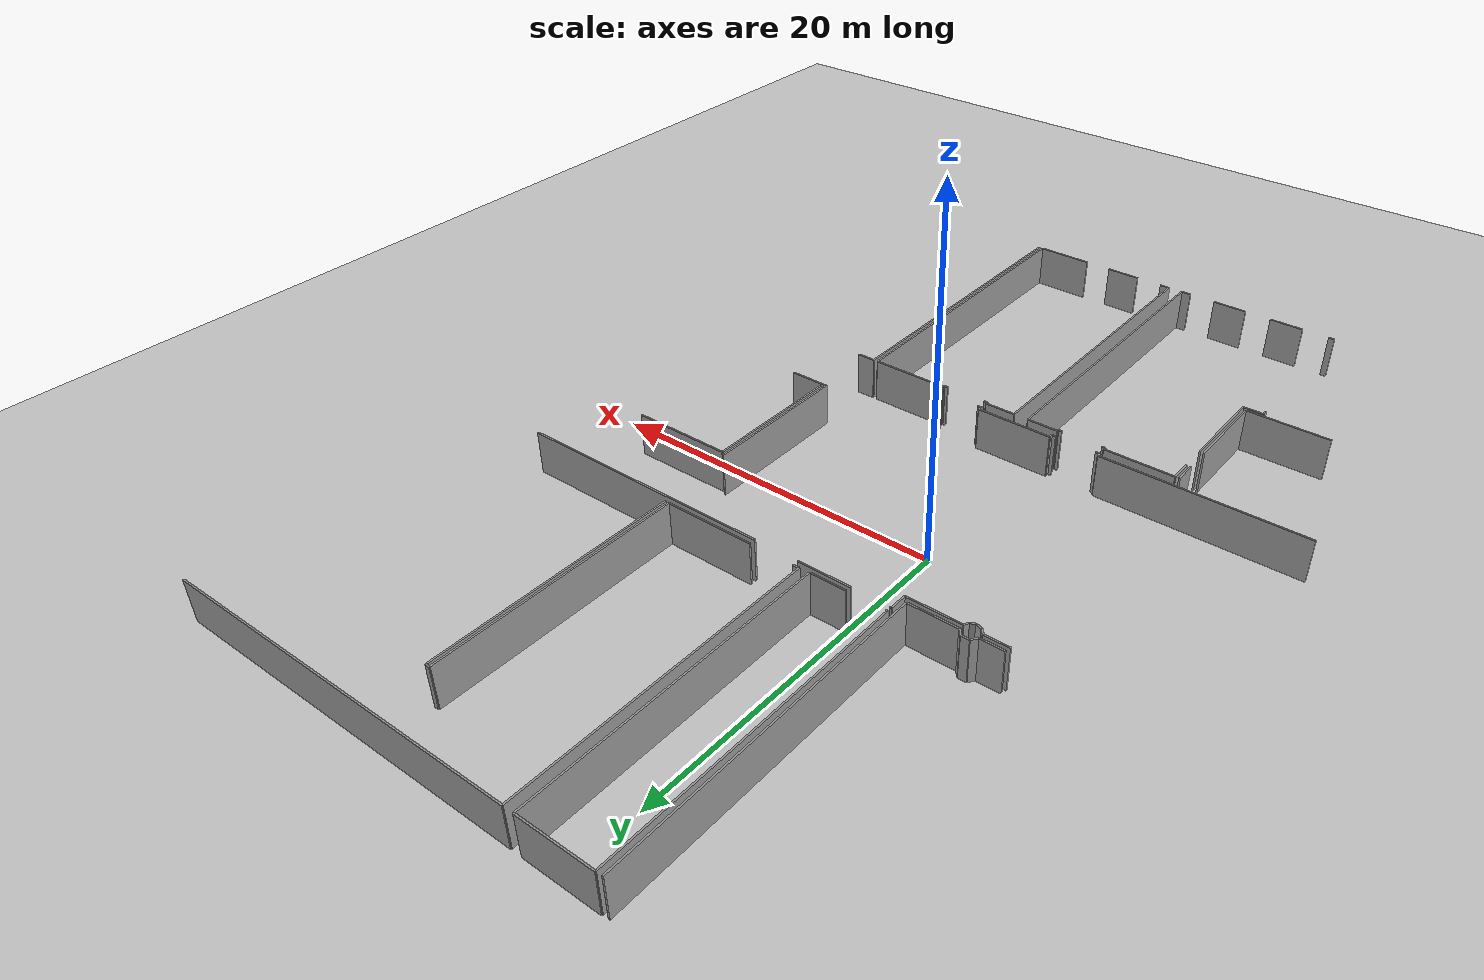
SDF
<sdf version="1.6">
 <world name="default">
  <model name="ground_plane">
   <static>1</static>
   <link name="link">
    <collision name="collision">
     <geometry><plane><normal>0 0 1</normal><size>100 100</size></plane></geometry>
     <surface><friction><ode><mu>100</mu><mu2>50</mu2></ode></friction></surface>
    </collision>
    <visual name="visual">
     <cast_shadows>0</cast_shadows>
     <geometry><plane><normal>0 0 1</normal><size>100 100</size></plane></geometry>
     <material>
      <script><uri>file://media/materials/scripts/gazebo.material</uri><name>Gazebo/Grey</name></script>
     </material>
    </visual>
   </link>
  </model>
  <model name="50041169">
   <static>1</static>
   <link name="Wall_99">
    <collision name="Wall_99_Collision">
     <geometry><box><size>0.275475099336 0.1 2.5</size></box></geometry>
     <pose>0.137737549668 0 1.25 0 0 0</pose>
    </collision>
    <visual name="Wall_99_Visual">
     <pose>0.137737549668 0 1.25 0 0 0</pose>
     <geometry><box><size>0.275475099336 0.1 2.5</size></box></geometry>
     <material>
      <script><uri>file://media/materials/scripts/gazebo.material</uri><name>Gazebo/Grey</name></script>
      <ambient>1 1 1 1</ambient>
     </material>
    </visual>
    <pose>77.8106711691 -38.6768943674 0 0 0 -1.57079632679</pose>
   </link>
   <link name="Wall_100">
    <collision name="Wall_100_Collision">
     <geometry><box><size>0.225457961484 0.1 2.5</size></box></geometry>
     <pose>0.112728980742 0 1.25 0 0 0</pose>
    </collision>
    <visual name="Wall_100_Visual">
     <pose>0.112728980742 0 1.25 0 0 0</pose>
     <geometry><box><size>0.225457961484 0.1 2.5</size></box></geometry>
     <material>
      <script><uri>file://media/materials/scripts/gazebo.material</uri><name>Gazebo/Grey</name></script>
      <ambient>1 1 1 1</ambient>
     </material>
    </visual>
    <pose>77.8106711691 -38.9523694667 0 0 0 3.14159265359</pose>
   </link>
   <link name="Wall_101">
    <collision name="Wall_101_Collision">
     <geometry><box><size>0.230408896449 0.1 2.5</size></box></geometry>
     <pose>0.115204448225 0 1.25 0 0 0</pose>
    </collision>
    <visual name="Wall_101_Visual">
     <pose>0.115204448225 0 1.25 0 0 0</pose>
     <geometry><box><size>0.230408896449 0.1 2.5</size></box></geometry>
     <material>
      <script><uri>file://media/materials/scripts/gazebo.material</uri><name>Gazebo/Grey</name></script>
      <ambient>1 1 1 1</ambient>
     </material>
    </visual>
    <pose>75.233138258 -38.9523694667 0 0 0 3.14159265359</pose>
   </link>
   <link name="Wall_102">
    <collision name="Wall_102_Collision">
     <geometry><box><size>0.239549084077 0.1 2.5</size></box></geometry>
     <pose>0.119774542039 0 1.25 0 0 0</pose>
    </collision>
    <visual name="Wall_102_Visual">
     <pose>0.119774542039 0 1.25 0 0 0</pose>
     <geometry><box><size>0.239549084077 0.1 2.5</size></box></geometry>
     <material>
      <script><uri>file://media/materials/scripts/gazebo.material</uri><name>Gazebo/Grey</name></script>
      <ambient>1 1 1 1</ambient>
     </material>
    </visual>
    <pose>75.0027293616 -38.9523694667 0 0 0 1.57079632679</pose>
   </link>
   <link name="Wall_103">
    <collision name="Wall_103_Collision">
     <geometry><box><size>4.36761326851 0.1 2.5</size></box></geometry>
     <pose>2.18380663425 0 1.25 0 0 0</pose>
    </collision>
    <visual name="Wall_103_Visual">
     <pose>2.18380663425 0 1.25 0 0 0</pose>
     <geometry><box><size>4.36761326851 0.1 2.5</size></box></geometry>
     <material>
      <script><uri>file://media/materials/scripts/gazebo.material</uri><name>Gazebo/Grey</name></script>
      <ambient>1 1 1 1</ambient>
     </material>
    </visual>
    <pose>75.0027293616 -38.7128203826 0 0 0 3.14159265359</pose>
   </link>
   <link name="Wall_104">
    <collision name="Wall_104_Collision">
     <geometry><box><size>0.230408896449 0.1 2.5</size></box></geometry>
     <pose>0.115204448225 0 1.25 0 0 0</pose>
    </collision>
    <visual name="Wall_104_Visual">
     <pose>0.115204448225 0 1.25 0 0 0</pose>
     <geometry><box><size>0.230408896449 0.1 2.5</size></box></geometry>
     <material>
      <script><uri>file://media/materials/scripts/gazebo.material</uri><name>Gazebo/Grey</name></script>
      <ambient>1 1 1 1</ambient>
     </material>
    </visual>
    <pose>70.6351160931 -38.7128203826 0 0 0 -1.57079632679</pose>
   </link>
   <link name="Wall_105">
    <collision name="Wall_105_Collision">
     <geometry><box><size>0.230281949399 0.1 2.5</size></box></geometry>
     <pose>0.115140974699 0 1.25 0 0 0</pose>
    </collision>
    <visual name="Wall_105_Visual">
     <pose>0.115140974699 0 1.25 0 0 0</pose>
     <geometry><box><size>0.230281949399 0.1 2.5</size></box></geometry>
     <material>
      <script><uri>file://media/materials/scripts/gazebo.material</uri><name>Gazebo/Grey</name></script>
      <ambient>1 1 1 1</ambient>
     </material>
    </visual>
    <pose>70.6351160931 -38.9432292791 0 0 0 3.14159265359</pose>
   </link>
   <link name="Wall_106">
    <collision name="Wall_106_Collision">
     <geometry><box><size>0.268746905666 0.1 2.5</size></box></geometry>
     <pose>0.134373452833 0 1.25 0 0 0</pose>
    </collision>
    <visual name="Wall_106_Visual">
     <pose>0.134373452833 0 1.25 0 0 0</pose>
     <geometry><box><size>0.268746905666 0.1 2.5</size></box></geometry>
     <material>
      <script><uri>file://media/materials/scripts/gazebo.material</uri><name>Gazebo/Grey</name></script>
      <ambient>1 1 1 1</ambient>
     </material>
    </visual>
    <pose>68.0530130882 -38.9432292791 0 0 0 3.14159265359</pose>
   </link>
   <link name="Wall_107">
    <collision name="Wall_107_Collision">
     <geometry><box><size>0.230408896449 0.1 2.5</size></box></geometry>
     <pose>0.115204448225 0 1.25 0 0 0</pose>
    </collision>
    <visual name="Wall_107_Visual">
     <pose>0.115204448225 0 1.25 0 0 0</pose>
     <geometry><box><size>0.230408896449 0.1 2.5</size></box></geometry>
     <material>
      <script><uri>file://media/materials/scripts/gazebo.material</uri><name>Gazebo/Grey</name></script>
      <ambient>1 1 1 1</ambient>
     </material>
    </visual>
    <pose>67.7842661826 -38.9432292791 0 0 0 1.57079632679</pose>
   </link>
   <link name="Wall_108">
    <collision name="Wall_108_Collision">
     <geometry><box><size>11.5385982507 0.1 2.5</size></box></geometry>
     <pose>5.76929912533 0 1.25 0 0 0</pose>
    </collision>
    <visual name="Wall_108_Visual">
     <pose>5.76929912533 0 1.25 0 0 0</pose>
     <geometry><box><size>11.5385982507 0.1 2.5</size></box></geometry>
     <material>
      <script><uri>file://media/materials/scripts/gazebo.material</uri><name>Gazebo/Grey</name></script>
      <ambient>1 1 1 1</ambient>
     </material>
    </visual>
    <pose>67.7842661826 -38.7128203826 0 0 0 3.14159265359</pose>
   </link>
   <link name="Wall_136">
    <collision name="Wall_136_Collision">
     <geometry><box><size>2.29951887068 0.1 2.5</size></box></geometry>
     <pose>1.14975943534 0 1.25 0 0 0</pose>
    </collision>
    <visual name="Wall_136_Visual">
     <pose>1.14975943534 0 1.25 0 0 0</pose>
     <geometry><box><size>2.29951887068 0.1 2.5</size></box></geometry>
     <material>
      <script><uri>file://media/materials/scripts/gazebo.material</uri><name>Gazebo/Grey</name></script>
      <ambient>1 1 1 1</ambient>
     </material>
    </visual>
    <pose>83.0011552182 -35.5910654666 0 0 0 0.0</pose>
   </link>
   <link name="Wall_222">
    <collision name="Wall_222_Collision">
     <geometry><box><size>1.40174933035 0.1 2.5</size></box></geometry>
     <pose>0.700874665177 0 1.25 0 0 0</pose>
    </collision>
    <visual name="Wall_222_Visual">
     <pose>0.700874665177 0 1.25 0 0 0</pose>
     <geometry><box><size>1.40174933035 0.1 2.5</size></box></geometry>
     <material>
      <script><uri>file://media/materials/scripts/gazebo.material</uri><name>Gazebo/Grey</name></script>
      <ambient>1 1 1 1</ambient>
     </material>
    </visual>
    <pose>63.6998717835 -23.6209741917 0 0 0 0.0</pose>
   </link>
   <link name="Wall_223">
    <collision name="Wall_223_Collision">
     <geometry><box><size>0.376580374346 0.1 2.5</size></box></geometry>
     <pose>0.188290187173 0 1.25 0 0 0</pose>
    </collision>
    <visual name="Wall_223_Visual">
     <pose>0.188290187173 0 1.25 0 0 0</pose>
     <geometry><box><size>0.376580374346 0.1 2.5</size></box></geometry>
     <material>
      <script><uri>file://media/materials/scripts/gazebo.material</uri><name>Gazebo/Grey</name></script>
      <ambient>1 1 1 1</ambient>
     </material>
    </visual>
    <pose>65.1016211138 -23.6209741917 0 0 0 -0.858403938428</pose>
   </link>
   <link name="Wall_224">
    <collision name="Wall_224_Collision">
     <geometry><box><size>0.375419604419 0.1 2.5</size></box></geometry>
     <pose>0.187709802209 0 1.25 0 0 0</pose>
    </collision>
    <visual name="Wall_224_Visual">
     <pose>0.187709802209 0 1.25 0 0 0</pose>
     <geometry><box><size>0.375419604419 0.1 2.5</size></box></geometry>
     <material>
      <script><uri>file://media/materials/scripts/gazebo.material</uri><name>Gazebo/Grey</name></script>
      <ambient>1 1 1 1</ambient>
     </material>
    </visual>
    <pose>65.3477714445 -23.9059703198 0 0 0 -0.289772585544</pose>
   </link>
   <link name="Wall_225">
    <collision name="Wall_225_Collision">
     <geometry><box><size>0.310488532535 0.1 2.5</size></box></geometry>
     <pose>0.155244266267 0 1.25 0 0 0</pose>
    </collision>
    <visual name="Wall_225_Visual">
     <pose>0.155244266267 0 1.25 0 0 0</pose>
     <geometry><box><size>0.310488532535 0.1 2.5</size></box></geometry>
     <material>
      <script><uri>file://media/materials/scripts/gazebo.material</uri><name>Gazebo/Grey</name></script>
      <ambient>1 1 1 1</ambient>
     </material>
    </visual>
    <pose>65.7075393853 -24.0132405774 0 0 0 0.463281911449</pose>
   </link>
   <link name="Wall_226">
    <collision name="Wall_226_Collision">
     <geometry><box><size>0.279561991931 0.1 2.5</size></box></geometry>
     <pose>0.139780995966 0 1.25 0 0 0</pose>
    </collision>
    <visual name="Wall_226_Visual">
     <pose>0.139780995966 0 1.25 0 0 0</pose>
     <geometry><box><size>0.279561991931 0.1 2.5</size></box></geometry>
     <material>
      <script><uri>file://media/materials/scripts/gazebo.material</uri><name>Gazebo/Grey</name></script>
      <ambient>1 1 1 1</ambient>
     </material>
    </visual>
    <pose>65.9852995316 -23.8744874513 0 0 0 1.07688571291</pose>
   </link>
   <link name="Wall_227">
    <collision name="Wall_227_Collision">
     <geometry><box><size>3.12010460437 0.1 2.5</size></box></geometry>
     <pose>1.56005230218 0 1.25 0 0 0</pose>
    </collision>
    <visual name="Wall_227_Visual">
     <pose>1.56005230218 0 1.25 0 0 0</pose>
     <geometry><box><size>3.12010460437 0.1 2.5</size></box></geometry>
     <material>
      <script><uri>file://media/materials/scripts/gazebo.material</uri><name>Gazebo/Grey</name></script>
      <ambient>1 1 1 1</ambient>
     </material>
    </visual>
    <pose>66.1178322522 -23.6283371206 0 0 0 0.0</pose>
   </link>
   <link name="Wall_228">
    <collision name="Wall_228_Collision">
     <geometry><box><size>0.985616899191 0.1 2.5</size></box></geometry>
     <pose>0.492808449596 0 1.25 0 0 0</pose>
    </collision>
    <visual name="Wall_228_Visual">
     <pose>0.492808449596 0 1.25 0 0 0</pose>
     <geometry><box><size>0.985616899191 0.1 2.5</size></box></geometry>
     <material>
      <script><uri>file://media/materials/scripts/gazebo.material</uri><name>Gazebo/Grey</name></script>
      <ambient>1 1 1 1</ambient>
     </material>
    </visual>
    <pose>69.2379368565 -23.6283371206 0 0 0 1.57079632679</pose>
   </link>
   <link name="Wall_229">
    <collision name="Wall_229_Collision">
     <geometry><box><size>0.0949563936882 0.1 2.5</size></box></geometry>
     <pose>0.0474781968441 0 1.25 0 0 0</pose>
    </collision>
    <visual name="Wall_229_Visual">
     <pose>0.0474781968441 0 1.25 0 0 0</pose>
     <geometry><box><size>0.0949563936882 0.1 2.5</size></box></geometry>
     <material>
      <script><uri>file://media/materials/scripts/gazebo.material</uri><name>Gazebo/Grey</name></script>
      <ambient>1 1 1 1</ambient>
     </material>
    </visual>
    <pose>69.2379368565 -22.6427202214 0 0 0 0.0</pose>
   </link>
   <link name="Wall_230">
    <collision name="Wall_230_Collision">
     <geometry><box><size>3.08151270105 0.1 2.5</size></box></geometry>
     <pose>1.54075635053 0 1.25 0 0 0</pose>
    </collision>
    <visual name="Wall_230_Visual">
     <pose>1.54075635053 0 1.25 0 0 0</pose>
     <geometry><box><size>3.08151270105 0.1 2.5</size></box></geometry>
     <material>
      <script><uri>file://media/materials/scripts/gazebo.material</uri><name>Gazebo/Grey</name></script>
      <ambient>1 1 1 1</ambient>
     </material>
    </visual>
    <pose>71.5057189646 -22.6427202214 0 0 0 0.0</pose>
   </link>
   <link name="Wall_231">
    <collision name="Wall_231_Collision">
     <geometry><box><size>14.9355743719 0.1 2.5</size></box></geometry>
     <pose>7.46778718596 0 1.25 0 0 0</pose>
    </collision>
    <visual name="Wall_231_Visual">
     <pose>7.46778718596 0 1.25 0 0 0</pose>
     <geometry><box><size>14.9355743719 0.1 2.5</size></box></geometry>
     <material>
      <script><uri>file://media/materials/scripts/gazebo.material</uri><name>Gazebo/Grey</name></script>
      <ambient>1 1 1 1</ambient>
     </material>
    </visual>
    <pose>77.1576555419 -22.6427202214 0 0 0 0.0</pose>
   </link>
   <link name="Wall_242">
    <collision name="Wall_242_Collision">
     <geometry><box><size>8.63062414305 0.1 2.5</size></box></geometry>
     <pose>4.31531207152 0 1.25 0 0 0</pose>
    </collision>
    <visual name="Wall_242_Visual">
     <pose>4.31531207152 0 1.25 0 0 0</pose>
     <geometry><box><size>8.63062414305 0.1 2.5</size></box></geometry>
     <material>
      <script><uri>file://media/materials/scripts/gazebo.material</uri><name>Gazebo/Grey</name></script>
      <ambient>1 1 1 1</ambient>
     </material>
    </visual>
    <pose>82.9965851243 -26.9662828634 0 0 0 -1.57011971701</pose>
   </link>
   <link name="Wall_243">
    <collision name="Wall_243_Collision">
     <geometry><box><size>2.81543168344 0.1 2.5</size></box></geometry>
     <pose>1.40771584172 0 1.25 0 0 0</pose>
    </collision>
    <visual name="Wall_243_Visual">
     <pose>1.40771584172 0 1.25 0 0 0</pose>
     <geometry><box><size>2.81543168344 0.1 2.5</size></box></geometry>
     <material>
      <script><uri>file://media/materials/scripts/gazebo.material</uri><name>Gazebo/Grey</name></script>
      <ambient>1 1 1 1</ambient>
     </material>
    </visual>
    <pose>68.9232351186 -23.3175707412 0 0 0 3.14159265359</pose>
   </link>
   <link name="Wall_244">
    <collision name="Wall_244_Collision">
     <geometry><box><size>0.440096423 0.1 2.5</size></box></geometry>
     <pose>0.2200482115 0 1.25 0 0 0</pose>
    </collision>
    <visual name="Wall_244_Visual">
     <pose>0.2200482115 0 1.25 0 0 0</pose>
     <geometry><box><size>0.440096423 0.1 2.5</size></box></geometry>
     <material>
      <script><uri>file://media/materials/scripts/gazebo.material</uri><name>Gazebo/Grey</name></script>
      <ambient>1 1 1 1</ambient>
     </material>
    </visual>
    <pose>66.1078034352 -23.3175707412 0 0 0 2.28126853888</pose>
   </link>
   <link name="Wall_245">
    <collision name="Wall_245_Collision">
     <geometry><box><size>0.452566234624 0.1 2.5</size></box></geometry>
     <pose>0.226283117312 0 1.25 0 0 0</pose>
    </collision>
    <visual name="Wall_245_Visual">
     <pose>0.226283117312 0 1.25 0 0 0</pose>
     <geometry><box><size>0.452566234624 0.1 2.5</size></box></geometry>
     <material>
      <script><uri>file://media/materials/scripts/gazebo.material</uri><name>Gazebo/Grey</name></script>
      <ambient>1 1 1 1</ambient>
     </material>
    </visual>
    <pose>65.8207761543 -22.9839538928 0 0 0 3.14159265359</pose>
   </link>
   <link name="Wall_246">
    <collision name="Wall_246_Collision">
     <geometry><box><size>0.417222716517 0.1 2.5</size></box></geometry>
     <pose>0.208611358258 0 1.25 0 0 0</pose>
    </collision>
    <visual name="Wall_246_Visual">
     <pose>0.208611358258 0 1.25 0 0 0</pose>
     <geometry><box><size>0.417222716517 0.1 2.5</size></box></geometry>
     <material>
      <script><uri>file://media/materials/scripts/gazebo.material</uri><name>Gazebo/Grey</name></script>
      <ambient>1 1 1 1</ambient>
     </material>
    </visual>
    <pose>65.3682099196 -22.9839538928 0 0 0 -2.22500783421</pose>
   </link>
   <link name="Wall_247">
    <collision name="Wall_247_Collision">
     <geometry><box><size>1.33573686415 0.1 2.5</size></box></geometry>
     <pose>0.667868432077 0 1.25 0 0 0</pose>
    </collision>
    <visual name="Wall_247_Visual">
     <pose>0.667868432077 0 1.25 0 0 0</pose>
     <geometry><box><size>1.33573686415 0.1 2.5</size></box></geometry>
     <material>
      <script><uri>file://media/materials/scripts/gazebo.material</uri><name>Gazebo/Grey</name></script>
      <ambient>1 1 1 1</ambient>
     </material>
    </visual>
    <pose>65.1143158189 -23.3150318002 0 0 0 3.14159265359</pose>
   </link>
   <link name="Wall_256">
    <collision name="Wall_256_Collision">
     <geometry><box><size>18.750092958 0.1 2.5</size></box></geometry>
     <pose>9.37504647899 0 1.25 0 0 0</pose>
    </collision>
    <visual name="Wall_256_Visual">
     <pose>9.37504647899 0 1.25 0 0 0</pose>
     <geometry><box><size>18.750092958 0.1 2.5</size></box></geometry>
     <material>
      <script><uri>file://media/materials/scripts/gazebo.material</uri><name>Gazebo/Grey</name></script>
      <ambient>1 1 1 1</ambient>
     </material>
    </visual>
    <pose>68.9006385437 -4.56749139934 0 0 0 -1.56959118181</pose>
   </link>
   <link name="Wall_257">
    <collision name="Wall_257_Collision">
     <geometry><box><size>2.08510530258 0.1 2.5</size></box></geometry>
     <pose>1.04255265129 0 1.25 0 0 0</pose>
    </collision>
    <visual name="Wall_257_Visual">
     <pose>1.04255265129 0 1.25 0 0 0</pose>
     <geometry><box><size>2.08510530258 0.1 2.5</size></box></geometry>
     <material>
      <script><uri>file://media/materials/scripts/gazebo.material</uri><name>Gazebo/Grey</name></script>
      <ambient>1 1 1 1</ambient>
     </material>
    </visual>
    <pose>73.6225610298 -22.3320807891 0 0 0 3.14159265359</pose>
   </link>
   <link name="Wall_258">
    <collision name="Wall_258_Collision">
     <geometry><box><size>0.100161222754 0.1 2.5</size></box></geometry>
     <pose>0.050080611377 0 1.25 0 0 0</pose>
    </collision>
    <visual name="Wall_258_Visual">
     <pose>0.050080611377 0 1.25 0 0 0</pose>
     <geometry><box><size>0.100161222754 0.1 2.5</size></box></geometry>
     <material>
      <script><uri>file://media/materials/scripts/gazebo.material</uri><name>Gazebo/Grey</name></script>
      <ambient>1 1 1 1</ambient>
     </material>
    </visual>
    <pose>69.355108984 -22.3320807891 0 0 0 3.14159265359</pose>
   </link>
   <link name="Wall_259">
    <collision name="Wall_259_Collision">
     <geometry><box><size>17.7610348724 0.1 2.5</size></box></geometry>
     <pose>8.88051743618 0 1.25 0 0 0</pose>
    </collision>
    <visual name="Wall_259_Visual">
     <pose>8.88051743618 0 1.25 0 0 0</pose>
     <geometry><box><size>17.7610348724 0.1 2.5</size></box></geometry>
     <material>
      <script><uri>file://media/materials/scripts/gazebo.material</uri><name>Gazebo/Grey</name></script>
      <ambient>1 1 1 1</ambient>
     </material>
    </visual>
    <pose>69.2549477613 -22.3320807891 0 0 0 1.57079632679</pose>
   </link>
   <link name="Wall_260">
    <collision name="Wall_260_Collision">
     <geometry><box><size>4.3320680944 0.1 2.5</size></box></geometry>
     <pose>2.1660340472 0 1.25 0 0 0</pose>
    </collision>
    <visual name="Wall_260_Visual">
     <pose>2.1660340472 0 1.25 0 0 0</pose>
     <geometry><box><size>4.3320680944 0.1 2.5</size></box></geometry>
     <material>
      <script><uri>file://media/materials/scripts/gazebo.material</uri><name>Gazebo/Grey</name></script>
      <ambient>1 1 1 1</ambient>
     </material>
    </visual>
    <pose>69.2549477613 -4.57104591675 0 0 0 0.0</pose>
   </link>
   <link name="Wall_261">
    <collision name="Wall_261_Collision">
     <geometry><box><size>17.7610704406 0.1 2.5</size></box></geometry>
     <pose>8.88053522031 0 1.25 0 0 0</pose>
    </collision>
    <visual name="Wall_261_Visual">
     <pose>8.88053522031 0 1.25 0 0 0</pose>
     <geometry><box><size>17.7610704406 0.1 2.5</size></box></geometry>
     <material>
      <script><uri>file://media/materials/scripts/gazebo.material</uri><name>Gazebo/Grey</name></script>
      <ambient>1 1 1 1</ambient>
     </material>
    </visual>
    <pose>73.5870158557 -4.57104591675 0 0 0 -1.56879502862</pose>
   </link>
   <link name="Wall_264">
    <collision name="Wall_264_Collision">
     <geometry><box><size>14.5909131301 0.1 2.5</size></box></geometry>
     <pose>7.29545656507 0 1.25 0 0 0</pose>
    </collision>
    <visual name="Wall_264_Visual">
     <pose>7.29545656507 0 1.25 0 0 0</pose>
     <geometry><box><size>14.5909131301 0.1 2.5</size></box></geometry>
     <material>
      <script><uri>file://media/materials/scripts/gazebo.material</uri><name>Gazebo/Grey</name></script>
      <ambient>1 1 1 1</ambient>
     </material>
    </visual>
    <pose>82.6109199853 -22.3085955848 0 0 0 1.57079632679</pose>
   </link>
   <link name="Wall_265">
    <collision name="Wall_265_Collision">
     <geometry><box><size>0.243992230841 0.1 2.5</size></box></geometry>
     <pose>0.12199611542 0 1.25 0 0 0</pose>
    </collision>
    <visual name="Wall_265_Visual">
     <pose>0.12199611542 0 1.25 0 0 0</pose>
     <geometry><box><size>0.243992230841 0.1 2.5</size></box></geometry>
     <material>
      <script><uri>file://media/materials/scripts/gazebo.material</uri><name>Gazebo/Grey</name></script>
      <ambient>1 1 1 1</ambient>
     </material>
    </visual>
    <pose>82.6109199853 -7.71768245465 0 0 0 3.14159265359</pose>
   </link>
   <link name="Wall_266">
    <collision name="Wall_266_Collision">
     <geometry><box><size>14.5707285491 0.1 2.5</size></box></geometry>
     <pose>7.28536427456 0 1.25 0 0 0</pose>
    </collision>
    <visual name="Wall_266_Visual">
     <pose>7.28536427456 0 1.25 0 0 0</pose>
     <geometry><box><size>14.5707285491 0.1 2.5</size></box></geometry>
     <material>
      <script><uri>file://media/materials/scripts/gazebo.material</uri><name>Gazebo/Grey</name></script>
      <ambient>1 1 1 1</ambient>
     </material>
    </visual>
    <pose>82.3669277544 -7.71768245465 0 0 0 -1.57079632679</pose>
   </link>
   <link name="Wall_267">
    <collision name="Wall_267_Collision">
     <geometry><box><size>5.19822781918 0.1 2.5</size></box></geometry>
     <pose>2.59911390959 0 1.25 0 0 0</pose>
    </collision>
    <visual name="Wall_267_Visual">
     <pose>2.59911390959 0 1.25 0 0 0</pose>
     <geometry><box><size>5.19822781918 0.1 2.5</size></box></geometry>
     <material>
      <script><uri>file://media/materials/scripts/gazebo.material</uri><name>Gazebo/Grey</name></script>
      <ambient>1 1 1 1</ambient>
     </material>
    </visual>
    <pose>82.3669277544 -22.2884110038 0 0 0 3.14159265359</pose>
   </link>
   <link name="Wall_268">
    <collision name="Wall_268_Collision">
     <geometry><box><size>0.375255480939 0.1 2.5</size></box></geometry>
     <pose>0.187627740469 0 1.25 0 0 0</pose>
    </collision>
    <visual name="Wall_268_Visual">
     <pose>0.187627740469 0 1.25 0 0 0</pose>
     <geometry><box><size>0.375255480939 0.1 2.5</size></box></geometry>
     <material>
      <script><uri>file://media/materials/scripts/gazebo.material</uri><name>Gazebo/Grey</name></script>
      <ambient>1 1 1 1</ambient>
     </material>
    </visual>
    <pose>74.585581354 -22.2884110038 0 0 0 3.14159265359</pose>
   </link>
   <link name="Wall_269">
    <collision name="Wall_269_Collision">
     <geometry><box><size>17.71723814 0.1 2.5</size></box></geometry>
     <pose>8.85861906999 0 1.25 0 0 0</pose>
    </collision>
    <visual name="Wall_269_Visual">
     <pose>8.85861906999 0 1.25 0 0 0</pose>
     <geometry><box><size>17.71723814 0.1 2.5</size></box></geometry>
     <material>
      <script><uri>file://media/materials/scripts/gazebo.material</uri><name>Gazebo/Grey</name></script>
      <ambient>1 1 1 1</ambient>
     </material>
    </visual>
    <pose>74.2103258731 -22.2884110038 0 0 0 1.57079632679</pose>
   </link>
   <link name="Wall_270">
    <collision name="Wall_270_Collision">
     <geometry><box><size>21.5478653853 0.1 2.5</size></box></geometry>
     <pose>10.7739326927 0 1.25 0 0 0</pose>
    </collision>
    <visual name="Wall_270_Visual">
     <pose>10.7739326927 0 1.25 0 0 0</pose>
     <geometry><box><size>21.5478653853 0.1 2.5</size></box></geometry>
     <material>
      <script><uri>file://media/materials/scripts/gazebo.material</uri><name>Gazebo/Grey</name></script>
      <ambient>1 1 1 1</ambient>
     </material>
    </visual>
    <pose>74.2103258731 -4.5711728638 0 0 0 0.0</pose>
   </link>
   <link name="Wall_284">
    <collision name="Wall_284_Collision">
     <geometry><box><size>8.16180671042 0.1 2.5</size></box></geometry>
     <pose>4.08090335521 0 1.25 0 0 0</pose>
    </collision>
    <visual name="Wall_284_Visual">
     <pose>4.08090335521 0 1.25 0 0 0</pose>
     <geometry><box><size>8.16180671042 0.1 2.5</size></box></geometry>
     <material>
      <script><uri>file://media/materials/scripts/gazebo.material</uri><name>Gazebo/Grey</name></script>
      <ambient>1 1 1 1</ambient>
     </material>
    </visual>
    <pose>83.2301676971 -35.3616721465 0 0 0 1.57079632679</pose>
   </link>
   <link name="Wall_285">
    <collision name="Wall_285_Collision">
     <geometry><box><size>5.75704873497 0.1 2.5</size></box></geometry>
     <pose>2.87852436749 0 1.25 0 0 0</pose>
    </collision>
    <visual name="Wall_285_Visual">
     <pose>2.87852436749 0 1.25 0 0 0</pose>
     <geometry><box><size>5.75704873497 0.1 2.5</size></box></geometry>
     <material>
      <script><uri>file://media/materials/scripts/gazebo.material</uri><name>Gazebo/Grey</name></script>
      <ambient>1 1 1 1</ambient>
     </material>
    </visual>
    <pose>83.2301676971 -27.1998654361 0 0 0 0.0</pose>
   </link>
   <link name="Wall_331">
    <collision name="Wall_331_Collision">
     <geometry><box><size>18.3531159154 0.1 2.5</size></box></geometry>
     <pose>9.17655795768 0 1.25 0 0 0</pose>
    </collision>
    <visual name="Wall_331_Visual">
     <pose>9.17655795768 0 1.25 0 0 0</pose>
     <geometry><box><size>18.3531159154 0.1 2.5</size></box></geometry>
     <material>
      <script><uri>file://media/materials/scripts/gazebo.material</uri><name>Gazebo/Grey</name></script>
      <ambient>1 1 1 1</ambient>
     </material>
    </visual>
    <pose>82.5565866477 -57.7982938316 0 0 0 1.57079632679</pose>
   </link>
   <link name="Wall_332">
    <collision name="Wall_332_Collision">
     <geometry><box><size>1.05061378899 0.1 2.5</size></box></geometry>
     <pose>0.525306894494 0 1.25 0 0 0</pose>
    </collision>
    <visual name="Wall_332_Visual">
     <pose>0.525306894494 0 1.25 0 0 0</pose>
     <geometry><box><size>1.05061378899 0.1 2.5</size></box></geometry>
     <material>
      <script><uri>file://media/materials/scripts/gazebo.material</uri><name>Gazebo/Grey</name></script>
      <ambient>1 1 1 1</ambient>
     </material>
    </visual>
    <pose>82.5565866477 -39.4451779163 0 0 0 0.0</pose>
   </link>
   <link name="Wall_345">
    <collision name="Wall_345_Collision">
     <geometry><box><size>3.31128686225 0.1 2.5</size></box></geometry>
     <pose>1.65564343112 0 1.25 0 0 0</pose>
    </collision>
    <visual name="Wall_345_Visual">
     <pose>1.65564343112 0 1.25 0 0 0</pose>
     <geometry><box><size>3.31128686225 0.1 2.5</size></box></geometry>
     <material>
      <script><uri>file://media/materials/scripts/gazebo.material</uri><name>Gazebo/Grey</name></script>
      <ambient>1 1 1 1</ambient>
     </material>
    </visual>
    <pose>82.3171645107 -57.7861069148 0 0 0 3.14159265359</pose>
   </link>
   <link name="Wall_346">
    <collision name="Wall_346_Collision">
     <geometry><box><size>2.01338021911 0.1 2.5</size></box></geometry>
     <pose>1.00669010956 0 1.25 0 0 0</pose>
    </collision>
    <visual name="Wall_346_Visual">
     <pose>1.00669010956 0 1.25 0 0 0</pose>
     <geometry><box><size>2.01338021911 0.1 2.5</size></box></geometry>
     <material>
      <script><uri>file://media/materials/scripts/gazebo.material</uri><name>Gazebo/Grey</name></script>
      <ambient>1 1 1 1</ambient>
     </material>
    </visual>
    <pose>77.4280527592 -57.7861069148 0 0 0 3.14159265359</pose>
   </link>
   <link name="Wall_347">
    <collision name="Wall_347_Collision">
     <geometry><box><size>0.580655808462 0.1 2.5</size></box></geometry>
     <pose>0.290327904231 0 1.25 0 0 0</pose>
    </collision>
    <visual name="Wall_347_Visual">
     <pose>0.290327904231 0 1.25 0 0 0</pose>
     <geometry><box><size>0.580655808462 0.1 2.5</size></box></geometry>
     <material>
      <script><uri>file://media/materials/scripts/gazebo.material</uri><name>Gazebo/Grey</name></script>
      <ambient>1 1 1 1</ambient>
     </material>
    </visual>
    <pose>73.8305002983 -57.7861069148 0 0 0 3.14159265359</pose>
   </link>
   <link name="Wall_348">
    <collision name="Wall_348_Collision">
     <geometry><box><size>18.3348355401 0.1 2.5</size></box></geometry>
     <pose>9.16741777005 0 1.25 0 0 0</pose>
    </collision>
    <visual name="Wall_348_Visual">
     <pose>9.16741777005 0 1.25 0 0 0</pose>
     <geometry><box><size>18.3348355401 0.1 2.5</size></box></geometry>
     <material>
      <script><uri>file://media/materials/scripts/gazebo.material</uri><name>Gazebo/Grey</name></script>
      <ambient>1 1 1 1</ambient>
     </material>
    </visual>
    <pose>73.2498444899 -57.7861069148 0 0 0 1.57079632679</pose>
   </link>
   <link name="Wall_349">
    <collision name="Wall_349_Collision">
     <geometry><box><size>1.77179998223 0.1 2.5</size></box></geometry>
     <pose>0.885899991114 0 1.25 0 0 0</pose>
    </collision>
    <visual name="Wall_349_Visual">
     <pose>0.885899991114 0 1.25 0 0 0</pose>
     <geometry><box><size>1.77179998223 0.1 2.5</size></box></geometry>
     <material>
      <script><uri>file://media/materials/scripts/gazebo.material</uri><name>Gazebo/Grey</name></script>
      <ambient>1 1 1 1</ambient>
     </material>
    </visual>
    <pose>73.2498444899 -39.4512713747 0 0 0 0.0</pose>
   </link>
   <link name="Wall_350">
    <collision name="Wall_350_Collision">
     <geometry><box><size>0.119203280312 0.1 2.5</size></box></geometry>
     <pose>0.0596016401559 0 1.25 0 0 0</pose>
    </collision>
    <visual name="Wall_350_Visual">
     <pose>0.0596016401559 0 1.25 0 0 0</pose>
     <geometry><box><size>0.119203280312 0.1 2.5</size></box></geometry>
     <material>
      <script><uri>file://media/materials/scripts/gazebo.material</uri><name>Gazebo/Grey</name></script>
      <ambient>1 1 1 1</ambient>
     </material>
    </visual>
    <pose>75.0216444721 -39.4512713747 0 0 0 -1.57079632679</pose>
   </link>
   <link name="Wall_351">
    <collision name="Wall_351_Collision">
     <geometry><box><size>0.195625404644 0.1 2.5</size></box></geometry>
     <pose>0.0978127023219 0 1.25 0 0 0</pose>
    </collision>
    <visual name="Wall_351_Visual">
     <pose>0.0978127023219 0 1.25 0 0 0</pose>
     <geometry><box><size>0.195625404644 0.1 2.5</size></box></geometry>
     <material>
      <script><uri>file://media/materials/scripts/gazebo.material</uri><name>Gazebo/Grey</name></script>
      <ambient>1 1 1 1</ambient>
     </material>
    </visual>
    <pose>75.0216444721 -39.570474655 0 0 0 0.0</pose>
   </link>
   <link name="Wall_352">
    <collision name="Wall_352_Collision">
     <geometry><box><size>0.208320109682 0.1 2.5</size></box></geometry>
     <pose>0.104160054841 0 1.25 0 0 0</pose>
    </collision>
    <visual name="Wall_352_Visual">
     <pose>0.104160054841 0 1.25 0 0 0</pose>
     <geometry><box><size>0.208320109682 0.1 2.5</size></box></geometry>
     <material>
      <script><uri>file://media/materials/scripts/gazebo.material</uri><name>Gazebo/Grey</name></script>
      <ambient>1 1 1 1</ambient>
     </material>
    </visual>
    <pose>77.5858479428 -39.570474655 0 0 0 0.0</pose>
   </link>
   <link name="Wall_353">
    <collision name="Wall_353_Collision">
     <geometry><box><size>0.119203280312 0.1 2.5</size></box></geometry>
     <pose>0.0596016401559 0 1.25 0 0 0</pose>
    </collision>
    <visual name="Wall_353_Visual">
     <pose>0.0596016401559 0 1.25 0 0 0</pose>
     <geometry><box><size>0.119203280312 0.1 2.5</size></box></geometry>
     <material>
      <script><uri>file://media/materials/scripts/gazebo.material</uri><name>Gazebo/Grey</name></script>
      <ambient>1 1 1 1</ambient>
     </material>
    </visual>
    <pose>77.7941680525 -39.570474655 0 0 0 1.57079632679</pose>
   </link>
   <link name="Wall_354">
    <collision name="Wall_354_Collision">
     <geometry><box><size>4.49379863659 0.1 2.5</size></box></geometry>
     <pose>2.24689931829 0 1.25 0 0 0</pose>
    </collision>
    <visual name="Wall_354_Visual">
     <pose>2.24689931829 0 1.25 0 0 0</pose>
     <geometry><box><size>4.49379863659 0.1 2.5</size></box></geometry>
     <material>
      <script><uri>file://media/materials/scripts/gazebo.material</uri><name>Gazebo/Grey</name></script>
      <ambient>1 1 1 1</ambient>
     </material>
    </visual>
    <pose>77.7941680525 -39.4512713747 0 0 0 0.0</pose>
   </link>
   <link name="Wall_355">
    <collision name="Wall_355_Collision">
     <geometry><box><size>18.3348587885 0.1 2.5</size></box></geometry>
     <pose>9.16742939426 0 1.25 0 0 0</pose>
    </collision>
    <visual name="Wall_355_Visual">
     <pose>9.16742939426 0 1.25 0 0 0</pose>
     <geometry><box><size>18.3348587885 0.1 2.5</size></box></geometry>
     <material>
      <script><uri>file://media/materials/scripts/gazebo.material</uri><name>Gazebo/Grey</name></script>
      <ambient>1 1 1 1</ambient>
     </material>
    </visual>
    <pose>82.2879666891 -39.4512713747 0 0 0 -1.56920385018</pose>
   </link>
   <link name="Wall_356">
    <collision name="Wall_356_Collision">
     <geometry><box><size>0.582686961268 0.1 2.5</size></box></geometry>
     <pose>0.291343480634 0 1.25 0 0 0</pose>
    </collision>
    <visual name="Wall_356_Visual">
     <pose>0.291343480634 0 1.25 0 0 0</pose>
     <geometry><box><size>0.582686961268 0.1 2.5</size></box></geometry>
     <material>
      <script><uri>file://media/materials/scripts/gazebo.material</uri><name>Gazebo/Grey</name></script>
      <ambient>1 1 1 1</ambient>
     </material>
    </visual>
    <pose>72.3888895942 -57.7982938316 0 0 0 3.14159265359</pose>
   </link>
   <link name="Wall_357">
    <collision name="Wall_357_Collision">
     <geometry><box><size>2.03242227667 0.1 2.5</size></box></geometry>
     <pose>1.01621113833 0 1.25 0 0 0</pose>
    </collision>
    <visual name="Wall_357_Visual">
     <pose>1.01621113833 0 1.25 0 0 0</pose>
     <geometry><box><size>2.03242227667 0.1 2.5</size></box></geometry>
     <material>
      <script><uri>file://media/materials/scripts/gazebo.material</uri><name>Gazebo/Grey</name></script>
      <ambient>1 1 1 1</ambient>
     </material>
    </visual>
    <pose>70.23929519 -57.7982938316 0 0 0 3.14159265359</pose>
   </link>
   <link name="Wall_358">
    <collision name="Wall_358_Collision">
     <geometry><box><size>2.00068551407 0.1 2.5</size></box></geometry>
     <pose>1.00034275704 0 1.25 0 0 0</pose>
    </collision>
    <visual name="Wall_358_Visual">
     <pose>1.00034275704 0 1.25 0 0 0</pose>
     <geometry><box><size>2.00068551407 0.1 2.5</size></box></geometry>
     <material>
      <script><uri>file://media/materials/scripts/gazebo.material</uri><name>Gazebo/Grey</name></script>
      <ambient>1 1 1 1</ambient>
     </material>
    </visual>
    <pose>66.6227006715 -57.7982938316 0 0 0 3.14159265359</pose>
   </link>
   <link name="Wall_359">
    <collision name="Wall_359_Collision">
     <geometry><box><size>0.340852830284 0.1 2.5</size></box></geometry>
     <pose>0.170426415142 0 1.25 0 0 0</pose>
    </collision>
    <visual name="Wall_359_Visual">
     <pose>0.170426415142 0 1.25 0 0 0</pose>
     <geometry><box><size>0.340852830284 0.1 2.5</size></box></geometry>
     <material>
      <script><uri>file://media/materials/scripts/gazebo.material</uri><name>Gazebo/Grey</name></script>
      <ambient>1 1 1 1</ambient>
     </material>
    </visual>
    <pose>63.0314955632 -57.7982938316 0 0 0 3.14159265359</pose>
   </link>
   <link name="Wall_362">
    <collision name="Wall_362_Collision">
     <geometry><box><size>0.291089586533 0.1 2.5</size></box></geometry>
     <pose>0.145544793267 0 1.25 0 0 0</pose>
    </collision>
    <visual name="Wall_362_Visual">
     <pose>0.145544793267 0 1.25 0 0 0</pose>
     <geometry><box><size>0.291089586533 0.1 2.5</size></box></geometry>
     <material>
      <script><uri>file://media/materials/scripts/gazebo.material</uri><name>Gazebo/Grey</name></script>
      <ambient>1 1 1 1</ambient>
     </material>
    </visual>
    <pose>62.6906427329 -47.9268911937 0 0 0 1.57079632679</pose>
   </link>
   <link name="Wall_363">
    <collision name="Wall_363_Collision">
     <geometry><box><size>1.13973061836 0.1 2.5</size></box></geometry>
     <pose>0.56986530918 0 1.25 0 0 0</pose>
    </collision>
    <visual name="Wall_363_Visual">
     <pose>0.56986530918 0 1.25 0 0 0</pose>
     <geometry><box><size>1.13973061836 0.1 2.5</size></box></geometry>
     <material>
      <script><uri>file://media/materials/scripts/gazebo.material</uri><name>Gazebo/Grey</name></script>
      <ambient>1 1 1 1</ambient>
     </material>
    </visual>
    <pose>62.6906427329 -47.6358016071 0 0 0 0.0</pose>
   </link>
   <link name="Wall_364">
    <collision name="Wall_364_Collision">
     <geometry><box><size>5.36275119648 0.1 2.5</size></box></geometry>
     <pose>2.68137559824 0 1.25 0 0 0</pose>
    </collision>
    <visual name="Wall_364_Visual">
     <pose>2.68137559824 0 1.25 0 0 0</pose>
     <geometry><box><size>5.36275119648 0.1 2.5</size></box></geometry>
     <material>
      <script><uri>file://media/materials/scripts/gazebo.material</uri><name>Gazebo/Grey</name></script>
      <ambient>1 1 1 1</ambient>
     </material>
    </visual>
    <pose>63.8303733513 -47.6358016071 0 0 0 1.57079632679</pose>
   </link>
   <link name="Wall_365">
    <collision name="Wall_365_Collision">
     <geometry><box><size>1.29587549033 0.1 2.5</size></box></geometry>
     <pose>0.647937745166 0 1.25 0 0 0</pose>
    </collision>
    <visual name="Wall_365_Visual">
     <pose>0.647937745166 0 1.25 0 0 0</pose>
     <geometry><box><size>1.29587549033 0.1 2.5</size></box></geometry>
     <material>
      <script><uri>file://media/materials/scripts/gazebo.material</uri><name>Gazebo/Grey</name></script>
      <ambient>1 1 1 1</ambient>
     </material>
    </visual>
    <pose>63.8303733513 -40.7286125957 0 0 0 1.57079632679</pose>
   </link>
   <link name="Wall_366">
    <collision name="Wall_366_Collision">
     <geometry><box><size>4.00416386325 0.1 2.5</size></box></geometry>
     <pose>2.00208193163 0 1.25 0 0 0</pose>
    </collision>
    <visual name="Wall_366_Visual">
     <pose>2.00208193163 0 1.25 0 0 0</pose>
     <geometry><box><size>4.00416386325 0.1 2.5</size></box></geometry>
     <material>
      <script><uri>file://media/materials/scripts/gazebo.material</uri><name>Gazebo/Grey</name></script>
      <ambient>1 1 1 1</ambient>
     </material>
    </visual>
    <pose>63.8303733513 -39.4327371054 0 0 0 0.0</pose>
   </link>
   <link name="Wall_367">
    <collision name="Wall_367_Collision">
     <geometry><box><size>0.132151879451 0.1 2.5</size></box></geometry>
     <pose>0.0660759397255 0 1.25 0 0 0</pose>
    </collision>
    <visual name="Wall_367_Visual">
     <pose>0.0660759397255 0 1.25 0 0 0</pose>
     <geometry><box><size>0.132151879451 0.1 2.5</size></box></geometry>
     <material>
      <script><uri>file://media/materials/scripts/gazebo.material</uri><name>Gazebo/Grey</name></script>
      <ambient>1 1 1 1</ambient>
     </material>
    </visual>
    <pose>67.8345372145 -39.4327371054 0 0 0 -1.57079632679</pose>
   </link>
   <link name="Wall_368">
    <collision name="Wall_368_Collision">
     <geometry><box><size>0.189404999175 0.1 2.5</size></box></geometry>
     <pose>0.0947024995874 0 1.25 0 0 0</pose>
    </collision>
    <visual name="Wall_368_Visual">
     <pose>0.0947024995874 0 1.25 0 0 0</pose>
     <geometry><box><size>0.189404999175 0.1 2.5</size></box></geometry>
     <material>
      <script><uri>file://media/materials/scripts/gazebo.material</uri><name>Gazebo/Grey</name></script>
      <ambient>1 1 1 1</ambient>
     </material>
    </visual>
    <pose>67.8345372145 -39.5648889848 0 0 0 0.0</pose>
   </link>
   <link name="Wall_369">
    <collision name="Wall_369_Collision">
     <geometry><box><size>0.210478209539 0.1 2.5</size></box></geometry>
     <pose>0.105239104769 0 1.25 0 0 0</pose>
    </collision>
    <visual name="Wall_369_Visual">
     <pose>0.105239104769 0 1.25 0 0 0</pose>
     <geometry><box><size>0.210478209539 0.1 2.5</size></box></geometry>
     <material>
      <script><uri>file://media/materials/scripts/gazebo.material</uri><name>Gazebo/Grey</name></script>
      <ambient>1 1 1 1</ambient>
     </material>
    </visual>
    <pose>70.3920124916 -39.5648889848 0 0 0 0.0</pose>
   </link>
   <link name="Wall_370">
    <collision name="Wall_370_Collision">
     <geometry><box><size>0.112348139591 0.1 2.5</size></box></geometry>
     <pose>0.0561740697955 0 1.25 0 0 0</pose>
    </collision>
    <visual name="Wall_370_Visual">
     <pose>0.0561740697955 0 1.25 0 0 0</pose>
     <geometry><box><size>0.112348139591 0.1 2.5</size></box></geometry>
     <material>
      <script><uri>file://media/materials/scripts/gazebo.material</uri><name>Gazebo/Grey</name></script>
      <ambient>1 1 1 1</ambient>
     </material>
    </visual>
    <pose>70.6024907011 -39.5648889848 0 0 0 1.57079632679</pose>
   </link>
   <link name="Wall_371">
    <collision name="Wall_371_Collision">
     <geometry><box><size>1.7782742818 0.1 2.5</size></box></geometry>
     <pose>0.889137140899 0 1.25 0 0 0</pose>
    </collision>
    <visual name="Wall_371_Visual">
     <pose>0.889137140899 0 1.25 0 0 0</pose>
     <geometry><box><size>1.7782742818 0.1 2.5</size></box></geometry>
     <material>
      <script><uri>file://media/materials/scripts/gazebo.material</uri><name>Gazebo/Grey</name></script>
      <ambient>1 1 1 1</ambient>
     </material>
    </visual>
    <pose>70.6024907011 -39.4525408452 0 0 0 0.0</pose>
   </link>
   <link name="Wall_372">
    <collision name="Wall_372_Collision">
     <geometry><box><size>18.3457547855 0.1 2.5</size></box></geometry>
     <pose>9.17287739273 0 1.25 0 0 0</pose>
    </collision>
    <visual name="Wall_372_Visual">
     <pose>9.17287739273 0 1.25 0 0 0</pose>
     <geometry><box><size>18.3457547855 0.1 2.5</size></box></geometry>
     <material>
      <script><uri>file://media/materials/scripts/gazebo.material</uri><name>Gazebo/Grey</name></script>
      <ambient>1 1 1 1</ambient>
     </material>
    </visual>
    <pose>72.3807649829 -39.4525408452 0 0 0 -1.57035346622</pose>
   </link>
   <link name="Wall_373">
    <collision name="Wall_373_Collision">
     <geometry><box><size>4.74946999606 0.1 2.5</size></box></geometry>
     <pose>2.37473499803 0 1.25 0 0 0</pose>
    </collision>
    <visual name="Wall_373_Visual">
     <pose>2.37473499803 0 1.25 0 0 0</pose>
     <geometry><box><size>4.74946999606 0.1 2.5</size></box></geometry>
     <material>
      <script><uri>file://media/materials/scripts/gazebo.material</uri><name>Gazebo/Grey</name></script>
      <ambient>1 1 1 1</ambient>
     </material>
    </visual>
    <pose>63.5957752022 -47.41618321 0 0 0 3.14159265359</pose>
   </link>
   <link name="Wall_377">
    <collision name="Wall_377_Collision">
     <geometry><box><size>1.26083810443 0.1 2.5</size></box></geometry>
     <pose>0.630419052213 0 1.25 0 0 0</pose>
    </collision>
    <visual name="Wall_377_Visual">
     <pose>0.630419052213 0 1.25 0 0 0</pose>
     <geometry><box><size>1.26083810443 0.1 2.5</size></box></geometry>
     <material>
      <script><uri>file://media/materials/scripts/gazebo.material</uri><name>Gazebo/Grey</name></script>
      <ambient>1 1 1 1</ambient>
     </material>
    </visual>
    <pose>63.5995836137 -39.4597768271 0 0 0 -1.57079632679</pose>
   </link>
   <link name="Wall_378">
    <collision name="Wall_378_Collision">
     <geometry><box><size>5.15417859971 0.1 2.5</size></box></geometry>
     <pose>2.57708929985 0 1.25 0 0 0</pose>
    </collision>
    <visual name="Wall_378_Visual">
     <pose>2.57708929985 0 1.25 0 0 0</pose>
     <geometry><box><size>5.15417859971 0.1 2.5</size></box></geometry>
     <material>
      <script><uri>file://media/materials/scripts/gazebo.material</uri><name>Gazebo/Grey</name></script>
      <ambient>1 1 1 1</ambient>
     </material>
    </visual>
    <pose>63.5995836137 -42.2620060173 0 0 0 -1.57153522472</pose>
   </link>
   <pose>-71.5 28.8982938316 0 0 0 0</pose>
  </model>
 </world>
</sdf>
